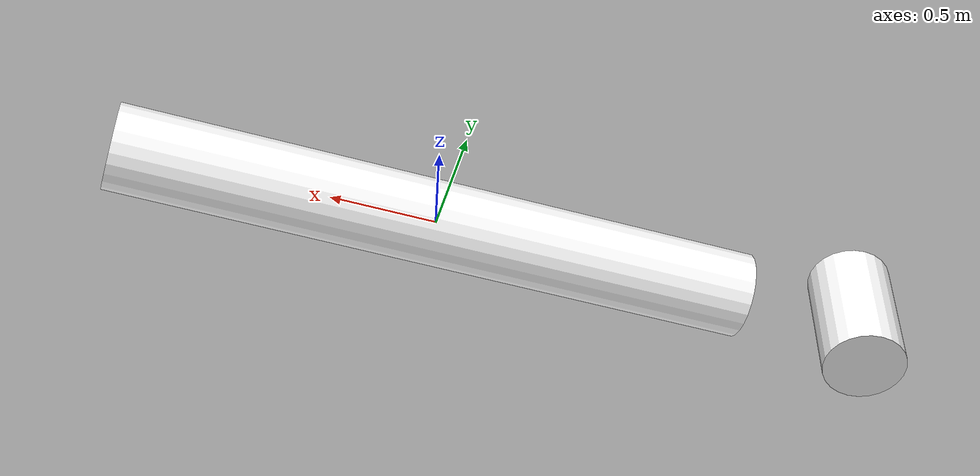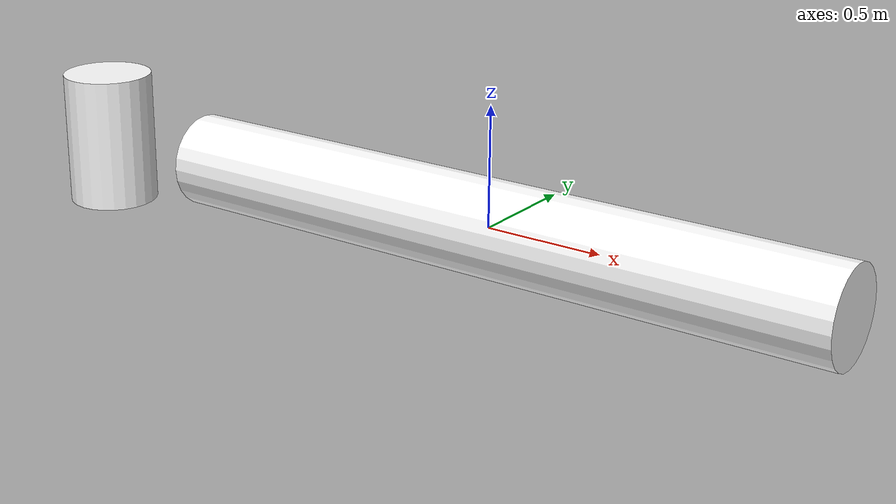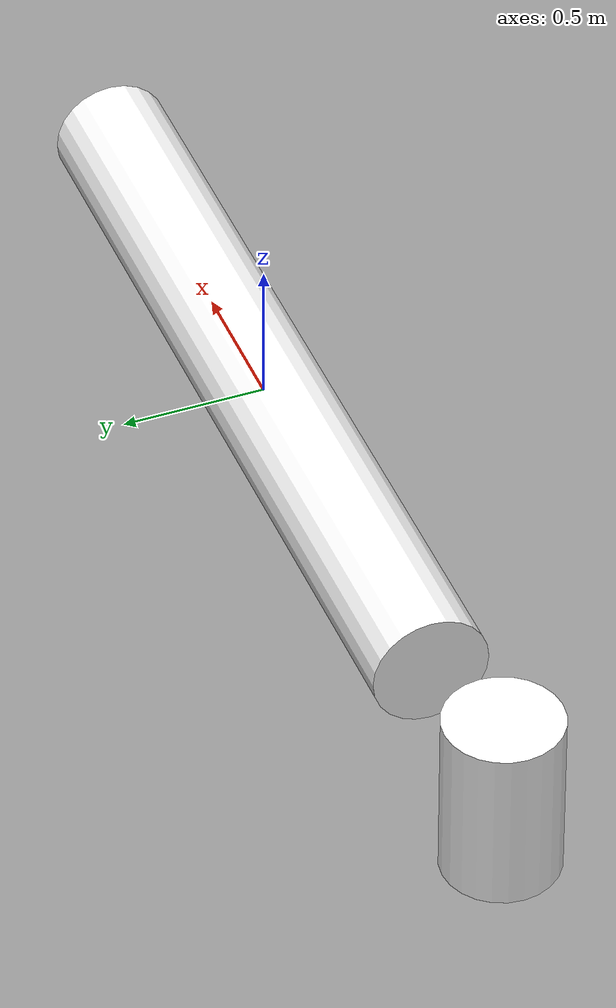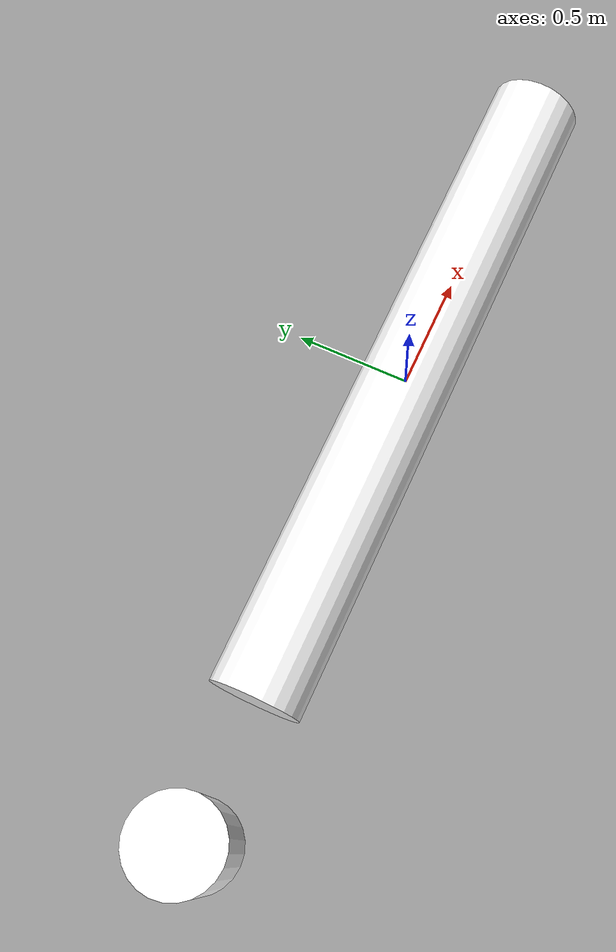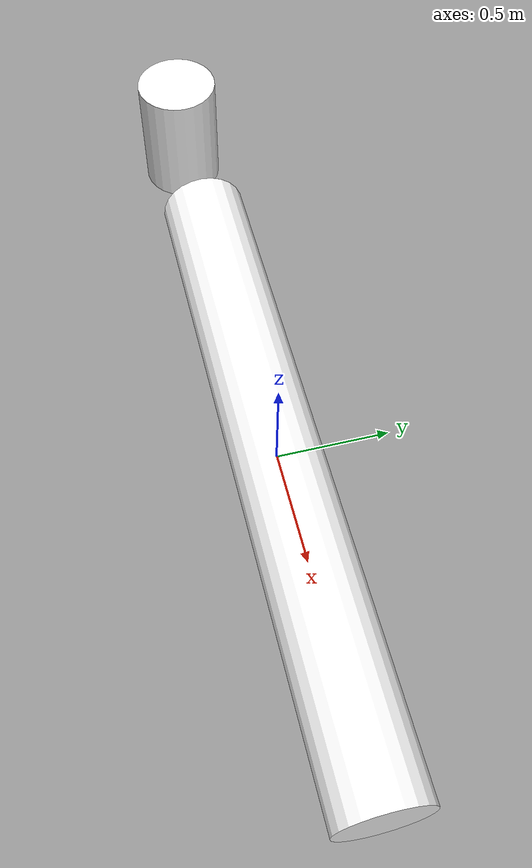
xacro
<?xml version="1.0"?>
<robot xmlns:xacro="http://www.ros.org/wiki/xacro">

    <xacro:include filename="inertial_macros.xacro"/>
    <xacro:include filename="missile_properties.xacro"/>

    <!-- base link -->
    <link name="base_link"/>

    <!-- missile main body -->
    <joint name="missile_joint" type="fixed">
        <parent link="base_link"/>
        <child link="missile_body"/>
        <origin xyz="0 0 0" rpy="0 0 0" />
    </joint>

    <link name="missile_body">
        <visual>
            <origin xyz="0 0 0" rpy="0 ${pi/2} 0"/>
            <geometry>
                <cylinder length="${missile_length}" radius="${missile_radius}"/>
            </geometry>
            <material name="white"/>
        </visual>
        <collision>
            <origin xyz="0 0 0" rpy="0 ${pi/2} 0"/>
            <geometry>
                <cylinder length="${missile_length}" radius="${missile_radius}"/>
            </geometry>
        </collision>
        <xacro:inertial_cylinder mass="1.0" length="${missile_length}" radius="${missile_radius}">
            <origin xyz="0 0 0" rpy="0 ${pi/2} 0"/>
        </xacro:inertial_cylinder>
    </link>

    <!-- head missile -->
    <joint name="booster_joint" type="fixed">
        <parent link="missile_body" />
        <child link="booster" />
        <origin xyz="${-missile_length/2 - missile_length/5} 0 0" rpy="0 0 0" />
    </joint>
    <link name="booster">
        <visual xyz="0 0 0" rpy="0 0 0">
            <geometry>
                <cylinder length="${missile_length/5}" radius="${missile_radius}"/>
            </geometry>
            <material name="white" />
        </visual>
        <collision xyz="0 0 0" rpy="0 0 0">
            <geometry>
                <cylinder length="${missile_length/5}" radius="${missile_radius}"/>
            </geometry>
            <material name="white" />
        </collision>
        <xacro:inertial_sphere mass="${head_mass}" radius="${missile_radius}">
            <origin xyz="0 0 0" rpy="0 ${pi/2} 0"/>
        </xacro:inertial_sphere>
    </link>

</robot>

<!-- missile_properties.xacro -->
<robot xmlns:xacro="http://www.ros.org/wiki/xacro">
    <xacro:property name="missile_length" value="3" />
    <xacro:property name="missile_radius" value="0.2" />
    <xacro:property name="wing_wide" value="0.5" />
    <xacro:property name="wing_height" value="0.3" />
    <xacro:property name="wing_thickness" value="0.02" />
    <xacro:property name="finhold_height" value="0.1" />
    <xacro:property name="fin_wide" value="0.3" />
    <xacro:property name="fin_height" value="0.2" />

    <xacro:property name="fin_mass" value="0.001" />
    <xacro:property name="finhold_mass" value="0.3" />
    <xacro:property name="wing_mass" value="0.1" />
    <xacro:property name="body_mass" value="1.5" />
    <xacro:property name="head_mass" value="0.2" />

    <material name="white">
        <color rgba="1 1 1 1" />
    </material>

    <material name="orange">
        <color rgba="1 0.3 0.1 1"/>
    </material>

    <material name="blue">
        <color rgba="0.2 0.2 1 1"/>
    </material>

    <material name="black">
        <color rgba="0 0 0 1"/>
    </material>

</robot>
